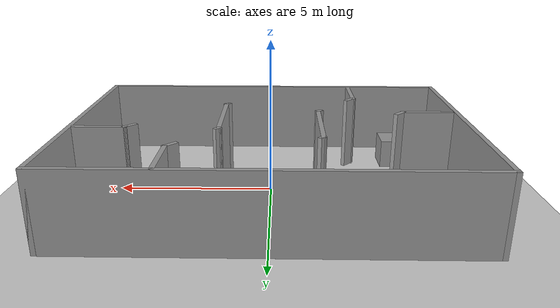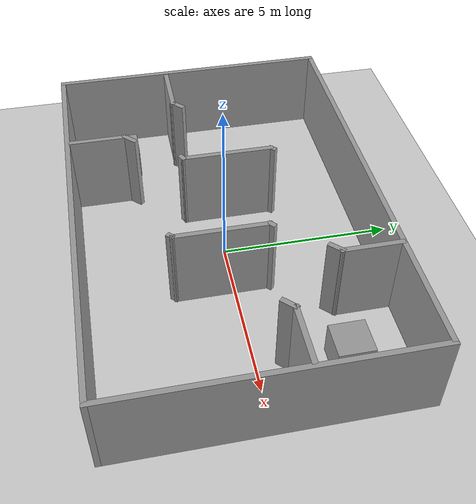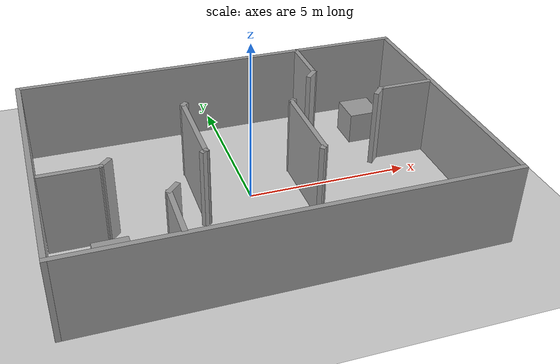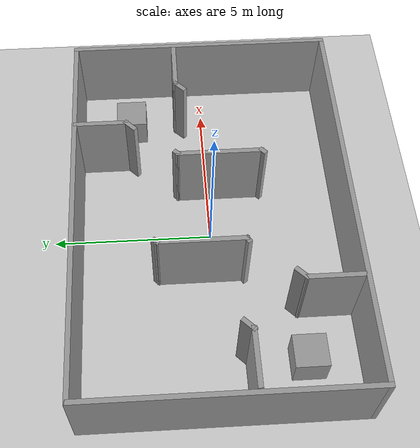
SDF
<sdf version="1.7">
 <world name="default">
  <light name="sun" type="directional">
   <pose>0 0 10 0 -0 0</pose>
   <diffuse>0.8 0.8 0.8 1</diffuse>
   <specular>0.2 0.2 0.2 1</specular>
   <attenuation>
    <range>1000</range>
    <constant>0.9</constant>
    <linear>0.01</linear>
    <quadratic>0.001</quadratic>
   </attenuation>
   <direction>-0.5 0.1 -0.9</direction>
   <spot><inner_angle>0</inner_angle><outer_angle>0</outer_angle><falloff>0</falloff></spot>
  </light>
  <model name="ground_plane">
   <static>1</static>
   <link name="link">
    <collision name="collision">
     <geometry><plane><normal>0 0 1</normal><size>100 100</size></plane></geometry>
     <surface>
      <contact><collide_bitmask>65535</collide_bitmask></contact>
      <friction><ode><mu>100</mu><mu2>50</mu2></ode></friction>
     </surface>
    </collision>
    <visual name="visual">
     <cast_shadows>0</cast_shadows>
     <geometry><plane><normal>0 0 1</normal><size>100 100</size></plane></geometry>
     <material>
      <script><uri>file://media/materials/scripts/gazebo.material</uri><name>Gazebo/Grey</name></script>
     </material>
    </visual>
   </link>
  </model>
  <gravity>0 0 -9.8</gravity>
  <magnetic_field>6e-06 2.3e-05 -4.2e-05</magnetic_field>
  <atmosphere type="adiabatic"/>
  <physics type="ode">
   <max_step_size>0.001</max_step_size>
   <real_time_factor>1</real_time_factor>
   <real_time_update_rate>1000</real_time_update_rate>
  </physics>
  <scene><ambient>0.4 0.4 0.4 1</ambient><background>0.7 0.7 0.7 1</background><shadows>1</shadows></scene>
  <spherical_coordinates>
   <surface_model>EARTH_WGS84</surface_model>
   <latitude_deg>0</latitude_deg>
   <longitude_deg>0</longitude_deg>
   <elevation>0</elevation>
   <heading_deg>0</heading_deg>
  </spherical_coordinates>
  <model name="map1">
   <pose>0.003945 -0.0046 0 0 -0 0</pose>
   <link name="Wall_10">
    <collision name="Wall_10_Collision">
     <geometry><box><size>8.5 0.15 2.5</size></box></geometry>
     <pose>0 0 1.25 0 -0 0</pose>
    </collision>
    <visual name="Wall_10_Visual">
     <pose>0 0 1.25 0 -0 0</pose>
     <geometry><box><size>8.5 0.15 2.5</size></box></geometry>
     <material>
      <script><uri>file://media/materials/scripts/gazebo.material</uri><name>Gazebo/Grey</name></script>
      <ambient>1 1 1 1</ambient>
     </material>
     <meta><layer>0</layer></meta>
    </visual>
    <pose>-6.175 -0 0 0 -0 1.5708</pose>
   </link>
   <link name="Wall_12">
    <collision name="Wall_12_Collision">
     <geometry><box><size>0.25 0.15 2.5</size></box></geometry>
     <pose>0 0 1.25 0 -0 0</pose>
    </collision>
    <visual name="Wall_12_Visual">
     <pose>0 0 1.25 0 -0 0</pose>
     <geometry><box><size>0.25 0.15 2.5</size></box></geometry>
     <material>
      <script><uri>file://media/materials/scripts/gazebo.material</uri><name>Gazebo/Grey</name></script>
      <ambient>1 1 1 1</ambient>
     </material>
     <meta><layer>0</layer></meta>
    </visual>
    <pose>-1.61676 -0.914869 0 0 -0 0.523599</pose>
   </link>
   <link name="Wall_13">
    <collision name="Wall_13_Collision">
     <geometry><box><size>2.75 0.15 2.5</size></box></geometry>
     <pose>0 0 1.25 0 -0 0</pose>
    </collision>
    <visual name="Wall_13_Visual">
     <pose>0 0 1.25 0 -0 0</pose>
     <geometry><box><size>2.75 0.15 2.5</size></box></geometry>
     <material>
      <script><uri>file://media/materials/scripts/gazebo.material</uri><name>Gazebo/Grey</name></script>
      <ambient>1 1 1 1</ambient>
     </material>
     <meta><layer>0</layer></meta>
    </visual>
    <pose>-1.57346 0.410131 0 0 -0 1.5708</pose>
   </link>
   <link name="Wall_14">
    <collision name="Wall_14_Collision">
     <geometry><box><size>0.25 0.15 2.5</size></box></geometry>
     <pose>0 0 1.25 0 -0 0</pose>
    </collision>
    <visual name="Wall_14_Visual">
     <pose>0 0 1.25 0 -0 0</pose>
     <geometry><box><size>0.25 0.15 2.5</size></box></geometry>
     <material>
      <script><uri>file://media/materials/scripts/gazebo.material</uri><name>Gazebo/Grey</name></script>
      <ambient>1 1 1 1</ambient>
     </material>
     <meta><layer>0</layer></meta>
    </visual>
    <pose>-1.53811 1.74549 0 0 -0 0.785398</pose>
   </link>
   <link name="Wall_16">
    <collision name="Wall_16_Collision">
     <geometry><box><size>0.25 0.15 2.5</size></box></geometry>
     <pose>0 0 1.25 0 -0 0</pose>
    </collision>
    <visual name="Wall_16_Visual">
     <pose>0 0 1.25 0 -0 0</pose>
     <geometry><box><size>0.25 0.15 2.5</size></box></geometry>
     <material>
      <script><uri>file://media/materials/scripts/gazebo.material</uri><name>Gazebo/Grey</name></script>
      <ambient>1 1 1 1</ambient>
     </material>
     <meta><layer>0</layer></meta>
    </visual>
    <pose>1.60531 0.984174 0 0 -0 -2.35619</pose>
   </link>
   <link name="Wall_17">
    <collision name="Wall_17_Collision">
     <geometry><box><size>2.75 0.15 2.5</size></box></geometry>
     <pose>0 0 1.25 0 -0 0</pose>
    </collision>
    <visual name="Wall_17_Visual">
     <pose>0 0 1.25 0 -0 0</pose>
     <geometry><box><size>2.75 0.15 2.5</size></box></geometry>
     <material>
      <script><uri>file://media/materials/scripts/gazebo.material</uri><name>Gazebo/Grey</name></script>
      <ambient>1 1 1 1</ambient>
     </material>
     <meta><layer>0</layer></meta>
    </visual>
    <pose>1.56996 -0.351181 0 0 -0 -1.5708</pose>
   </link>
   <link name="Wall_18">
    <collision name="Wall_18_Collision">
     <geometry><box><size>0.25 0.15 2.5</size></box></geometry>
     <pose>0 0 1.25 0 -0 0</pose>
    </collision>
    <visual name="Wall_18_Visual">
     <pose>0 0 1.25 0 -0 0</pose>
     <geometry><box><size>0.25 0.15 2.5</size></box></geometry>
     <material>
      <script><uri>file://media/materials/scripts/gazebo.material</uri><name>Gazebo/Grey</name></script>
      <ambient>1 1 1 1</ambient>
     </material>
     <meta><layer>0</layer></meta>
    </visual>
    <pose>1.5346 -1.68654 0 0 -0 -2.35619</pose>
   </link>
   <link name="Wall_20">
    <collision name="Wall_20_Collision">
     <geometry><box><size>1.75 0.15 2.5</size></box></geometry>
     <pose>0 0 1.25 0 -0 0</pose>
    </collision>
    <visual name="Wall_20_Visual">
     <pose>0 0 1.25 0 -0 0</pose>
     <geometry><box><size>1.75 0.15 2.5</size></box></geometry>
     <material>
      <script><uri>file://media/materials/scripts/gazebo.material</uri><name>Gazebo/Grey</name></script>
      <ambient>1 1 1 1</ambient>
     </material>
     <meta><layer>0</layer></meta>
    </visual>
    <pose>-5.19967 -0.808365 0 0 -0 0</pose>
   </link>
   <link name="Wall_21">
    <collision name="Wall_21_Collision">
     <geometry><box><size>0.5 0.15 2.5</size></box></geometry>
     <pose>0 0 1.25 0 -0 0</pose>
    </collision>
    <visual name="Wall_21_Visual">
     <pose>0 0 1.25 0 -0 0</pose>
     <geometry><box><size>0.5 0.15 2.5</size></box></geometry>
     <material>
      <script><uri>file://media/materials/scripts/gazebo.material</uri><name>Gazebo/Grey</name></script>
      <ambient>1 1 1 1</ambient>
     </material>
     <meta><layer>0</layer></meta>
    </visual>
    <pose>-4.27593 -0.684622 0 0 -0 0.785398</pose>
   </link>
   <link name="Wall_23">
    <collision name="Wall_23_Collision">
     <geometry><box><size>0.5 0.15 2.5</size></box></geometry>
     <pose>0 0 1.25 0 -0 0</pose>
    </collision>
    <visual name="Wall_23_Visual">
     <pose>0 0 1.25 0 -0 0</pose>
     <geometry><box><size>0.5 0.15 2.5</size></box></geometry>
     <material>
      <script><uri>file://media/materials/scripts/gazebo.material</uri><name>Gazebo/Grey</name></script>
      <ambient>1 1 1 1</ambient>
     </material>
     <meta><layer>0</layer></meta>
    </visual>
    <pose>2.77157 2.41524 0 0 -0 0.785398</pose>
   </link>
   <link name="Wall_24">
    <collision name="Wall_24_Collision">
     <geometry><box><size>1.75 0.15 2.5</size></box></geometry>
     <pose>0 0 1.25 0 -0 0</pose>
    </collision>
    <visual name="Wall_24_Visual">
     <pose>0 0 1.25 0 -0 0</pose>
     <geometry><box><size>1.75 0.15 2.5</size></box></geometry>
     <material>
      <script><uri>file://media/materials/scripts/gazebo.material</uri><name>Gazebo/Grey</name></script>
      <ambient>1 1 1 1</ambient>
     </material>
     <meta><layer>0</layer></meta>
    </visual>
    <pose>2.89531 3.33898 0 0 -0 1.5708</pose>
   </link>
   <link name="Wall_26">
    <collision name="Wall_26_Collision">
     <geometry><box><size>0.5 0.15 2.5</size></box></geometry>
     <pose>0 0 1.25 0 -0 0</pose>
    </collision>
    <visual name="Wall_26_Visual">
     <pose>0 0 1.25 0 -0 0</pose>
     <geometry><box><size>0.5 0.15 2.5</size></box></geometry>
     <material>
      <script><uri>file://media/materials/scripts/gazebo.material</uri><name>Gazebo/Grey</name></script>
      <ambient>1 1 1 1</ambient>
     </material>
     <meta><layer>0</layer></meta>
    </visual>
    <pose>-2.8077 -2.32962 0 0 -0 -2.35619</pose>
   </link>
   <link name="Wall_27">
    <collision name="Wall_27_Collision">
     <geometry><box><size>1.75 0.15 2.5</size></box></geometry>
     <pose>0 0 1.25 0 -0 0</pose>
    </collision>
    <visual name="Wall_27_Visual">
     <pose>0 0 1.25 0 -0 0</pose>
     <geometry><box><size>1.75 0.15 2.5</size></box></geometry>
     <material>
      <script><uri>file://media/materials/scripts/gazebo.material</uri><name>Gazebo/Grey</name></script>
      <ambient>1 1 1 1</ambient>
     </material>
     <meta><layer>0</layer></meta>
    </visual>
    <pose>-2.93144 -3.25337 0 0 -0 -1.5708</pose>
   </link>
   <link name="Wall_29">
    <collision name="Wall_29_Collision">
     <geometry><box><size>0.5 0.15 2.5</size></box></geometry>
     <pose>0 0 1.25 0 -0 0</pose>
    </collision>
    <visual name="Wall_29_Visual">
     <pose>0 0 1.25 0 -0 0</pose>
     <geometry><box><size>0.5 0.15 2.5</size></box></geometry>
     <material>
      <script><uri>file://media/materials/scripts/gazebo.material</uri><name>Gazebo/Grey</name></script>
      <ambient>1 1 1 1</ambient>
     </material>
     <meta><layer>0</layer></meta>
    </visual>
    <pose>4.33979 0.769863 0 0 -0 0.785398</pose>
   </link>
   <link name="Wall_30">
    <collision name="Wall_30_Collision">
     <geometry><box><size>1.75 0.15 2.5</size></box></geometry>
     <pose>0 0 1.25 0 -0 0</pose>
    </collision>
    <visual name="Wall_30_Visual">
     <pose>0 0 1.25 0 -0 0</pose>
     <geometry><box><size>1.75 0.15 2.5</size></box></geometry>
     <material>
      <script><uri>file://media/materials/scripts/gazebo.material</uri><name>Gazebo/Grey</name></script>
      <ambient>1 1 1 1</ambient>
     </material>
     <meta><layer>0</layer></meta>
    </visual>
    <pose>5.26353 0.893607 0 0 -0 0</pose>
   </link>
   <link name="Wall_7">
    <collision name="Wall_7_Collision">
     <geometry><box><size>12.5 0.15 2.5</size></box></geometry>
     <pose>0 0 1.25 0 -0 0</pose>
    </collision>
    <visual name="Wall_7_Visual">
     <pose>0 0 1.25 0 -0 0</pose>
     <geometry><box><size>12.5 0.15 2.5</size></box></geometry>
     <material>
      <script><uri>file://media/materials/scripts/gazebo.material</uri><name>Gazebo/Grey</name></script>
      <ambient>1 1 1 1</ambient>
     </material>
     <meta><layer>0</layer></meta>
    </visual>
    <pose>0 4.175 0 0 -0 0</pose>
   </link>
   <link name="Wall_8">
    <collision name="Wall_8_Collision">
     <geometry><box><size>8.5 0.15 2.5</size></box></geometry>
     <pose>0 0 1.25 0 -0 0</pose>
    </collision>
    <visual name="Wall_8_Visual">
     <pose>0 0 1.25 0 -0 0</pose>
     <geometry><box><size>8.5 0.15 2.5</size></box></geometry>
     <material>
      <script><uri>file://media/materials/scripts/gazebo.material</uri><name>Gazebo/Grey</name></script>
      <ambient>1 1 1 1</ambient>
     </material>
     <meta><layer>0</layer></meta>
    </visual>
    <pose>6.175 -0 0 0 -0 -1.5708</pose>
   </link>
   <link name="Wall_9">
    <collision name="Wall_9_Collision">
     <geometry><box><size>12.5 0.15 2.5</size></box></geometry>
     <pose>0 0 1.25 0 -0 0</pose>
    </collision>
    <visual name="Wall_9_Visual">
     <pose>0 0 1.25 0 -0 0</pose>
     <geometry><box><size>12.5 0.15 2.5</size></box></geometry>
     <material>
      <script><uri>file://media/materials/scripts/gazebo.material</uri><name>Gazebo/Grey</name></script>
      <ambient>1 1 1 1</ambient>
     </material>
     <meta><layer>0</layer></meta>
    </visual>
    <pose>0 -4.175 0 0 -0 3.14159</pose>
   </link>
   <static>1</static>
  </model>
  <model name="map2">
   <link name="link">
    <inertial>
     <mass>1</mass>
     <inertia>
      <ixx>0.166667</ixx>
      <ixy>0</ixy>
      <ixz>0</ixz>
      <iyy>0.166667</iyy>
      <iyz>0</iyz>
      <izz>0.166667</izz>
     </inertia>
    </inertial>
    <visual name="visual">
     <geometry><box><size>1 1 1</size></box></geometry>
     <material>
      <script><name>Gazebo/Grey</name><uri>file://media/materials/scripts/gazebo.material</uri></script>
      <shader type="pixel"><normal_map>__default__</normal_map></shader>
      <ambient>0.3 0.3 0.3 1</ambient>
      <diffuse>0.7 0.7 0.7 1</diffuse>
      <specular>0.01 0.01 0.01 1</specular>
      <emissive>0 0 0 1</emissive>
     </material>
    </visual>
    <collision name="collision">
     <geometry><box><size>1 1 1</size></box></geometry>
     <surface>
      <friction>
       <ode><mu>1</mu><mu2>1</mu2><fdir1>0 0 0</fdir1><slip1>0</slip1><slip2>0</slip2></ode>
       <torsional>
        <coefficient>1</coefficient>
        <patch_radius>0</patch_radius>
        <surface_radius>0</surface_radius>
        <use_patch_radius>1</use_patch_radius>
        <ode><slip>0</slip></ode>
       </torsional>
      </friction>
      <bounce><restitution_coefficient>0</restitution_coefficient><threshold>1e+06</threshold></bounce>
      <contact>
       <collide_without_contact>0</collide_without_contact>
       <collide_without_contact_bitmask>1</collide_without_contact_bitmask>
       <collide_bitmask>1</collide_bitmask>
       <ode>
        <soft_cfm>0</soft_cfm>
        <soft_erp>0.2</soft_erp>
        <kp>1e+13</kp>
        <kd>1</kd>
        <max_vel>0.01</max_vel>
        <min_depth>0</min_depth>
       </ode>
       <bullet>
        <split_impulse>1</split_impulse>
        <split_impulse_penetration_threshold>-0.01</split_impulse_penetration_threshold>
        <soft_cfm>0</soft_cfm>
        <soft_erp>0.2</soft_erp>
        <kp>1e+13</kp>
        <kd>1</kd>
       </bullet>
      </contact>
     </surface>
    </collision>
   </link>
   <link name="link_clone">
    <inertial>
     <mass>1</mass>
     <inertia>
      <ixx>0.166667</ixx>
      <ixy>0</ixy>
      <ixz>0</ixz>
      <iyy>0.166667</iyy>
      <iyz>0</iyz>
      <izz>0.166667</izz>
     </inertia>
    </inertial>
    <pose>-9.02692 -4.9533 -0 0 -0 0</pose>
    <visual name="visual">
     <geometry><box><size>1 1 1</size></box></geometry>
     <material>
      <script><name>Gazebo/Grey</name><uri>file://media/materials/scripts/gazebo.material</uri></script>
      <shader type="pixel"><normal_map>__default__</normal_map></shader>
      <ambient>0.3 0.3 0.3 1</ambient>
      <diffuse>0.7 0.7 0.7 1</diffuse>
      <specular>0.01 0.01 0.01 1</specular>
      <emissive>0 0 0 1</emissive>
     </material>
    </visual>
    <collision name="collision">
     <geometry><box><size>1 1 1</size></box></geometry>
     <surface>
      <friction>
       <ode><mu>1</mu><mu2>1</mu2><fdir1>0 0 0</fdir1><slip1>0</slip1><slip2>0</slip2></ode>
       <torsional>
        <coefficient>1</coefficient>
        <patch_radius>0</patch_radius>
        <surface_radius>0</surface_radius>
        <use_patch_radius>1</use_patch_radius>
        <ode><slip>0</slip></ode>
       </torsional>
      </friction>
      <bounce><restitution_coefficient>0</restitution_coefficient><threshold>1e+06</threshold></bounce>
      <contact>
       <collide_without_contact>0</collide_without_contact>
       <collide_without_contact_bitmask>1</collide_without_contact_bitmask>
       <collide_bitmask>1</collide_bitmask>
       <ode>
        <soft_cfm>0</soft_cfm>
        <soft_erp>0.2</soft_erp>
        <kp>1e+13</kp>
        <kd>1</kd>
        <max_vel>0.01</max_vel>
        <min_depth>0</min_depth>
       </ode>
       <bullet>
        <split_impulse>1</split_impulse>
        <split_impulse_penetration_threshold>-0.01</split_impulse_penetration_threshold>
        <soft_cfm>0</soft_cfm>
        <soft_erp>0.2</soft_erp>
        <kp>1e+13</kp>
        <kd>1</kd>
       </bullet>
      </contact>
     </surface>
    </collision>
   </link>
   <static>0</static>
   <pose>4.5323 2.42134 0.5 0 -0 0</pose>
  </model>
 </world>
</sdf>
